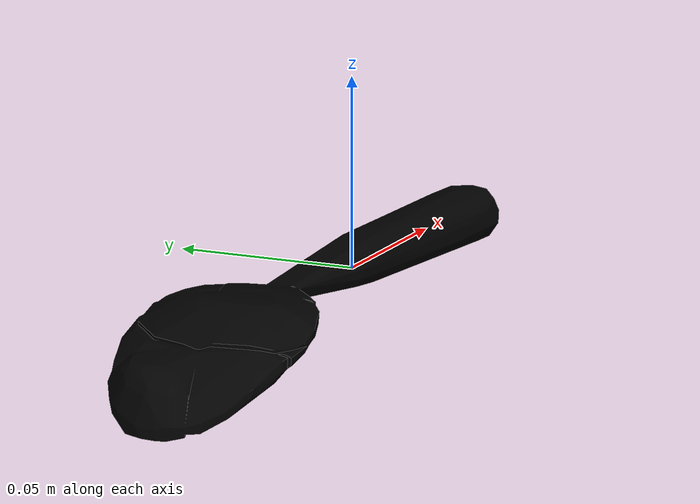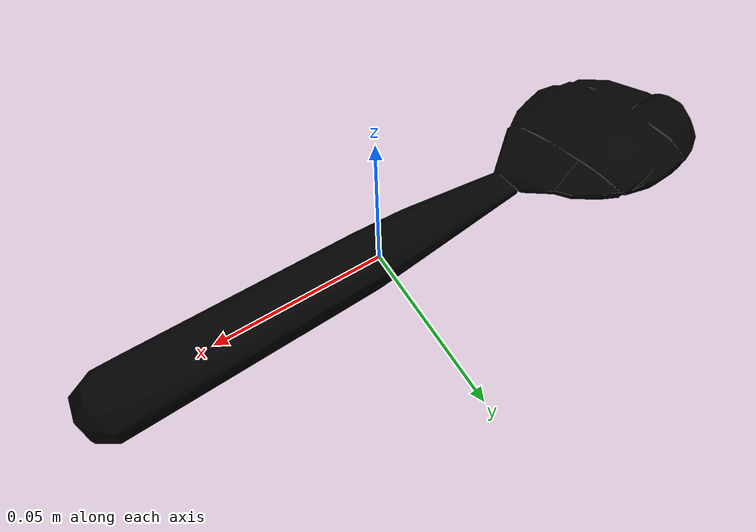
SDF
<?xml version="1.0"?>
<sdf version="1.4">
  <model name="031_spoon_textured">
    <pose>0 0 0  0 0 0</pose>
    <link name="body">
      <inertial>
        <mass> 1.0 </mass>
        <pose>0 0 0 0 0 0</pose>
        <inertia>
          <ixx>4.8597184801088646e-05</ixx>
          <ixy>0.0</ixy>
          <ixz>0.0</ixz>
          <iyy>0.003716364553088435</iyy>
          <iyz>0.0</iyz>
          <izz>0.0037400530734904756</izz>
        </inertia>
      </inertial>
      <visual name="visual">
        <geometry>
          <mesh>
            <uri>model://031_spoon_textured/textured.dae</uri>
          </mesh>
        </geometry>
        <pose>0.01380677038406538 0.01613376470551556 -0.008905167204211018 0.03477691417045139 -0.04294274526548913 0.3455338708817192</pose>
      </visual>
      <collision name="collision">
        <geometry>
          <mesh>
            <uri>model://031_spoon_textured/textured.col.dae</uri>
          </mesh>
        </geometry>
        <max_contacts>10</max_contacts>
        <surface>
          <friction>
            <ode>
              <mu>0.8</mu>
              <mu2>0.8</mu2>
              <slip1>0</slip1>
              <slip2>0</slip2>
            </ode>
            <torsional>
              <ode/>
            </torsional>
          </friction>
          <contact>
            <ode>
              <kp>1000000.0</kp>
              <kd>1.0</kd>
              <max_vel>0.0</max_vel>
            </ode>
          </contact>
        </surface>
        <pose>0.01380677038406538 0.01613376470551556 -0.008905167204211018 0.03477691417045139 -0.04294274526548913 0.3455338708817192</pose>
      </collision>
    </link>
  </model>
</sdf>
